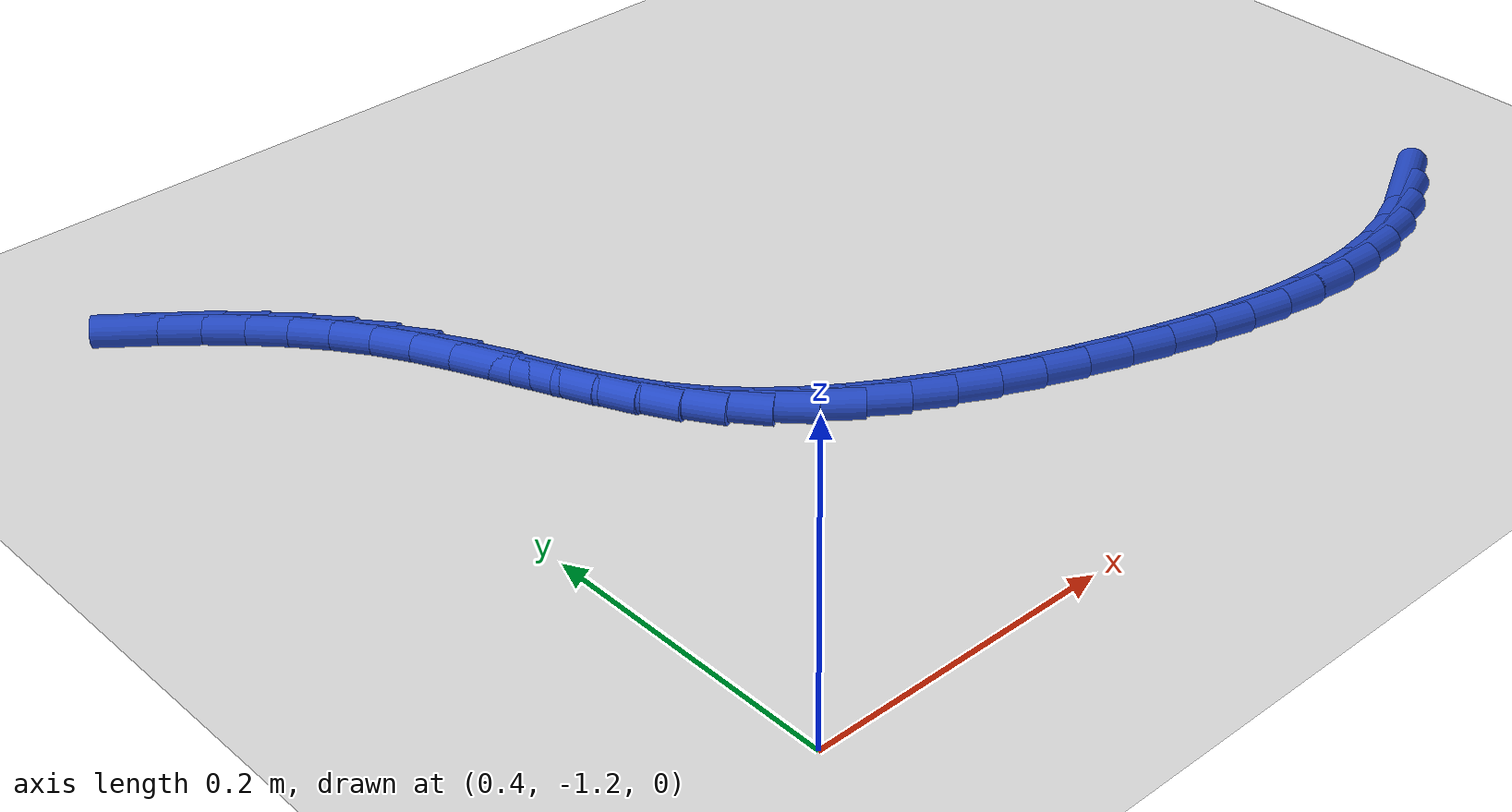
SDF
<sdf version="1.6">
 <world name="default">
  <model name="ground_plane">
   <static>1</static>
   <link name="link">
    <collision name="collision">
     <geometry><plane><normal>0 0 1</normal><size>100 100</size></plane></geometry>
     <surface><friction><ode><mu>100</mu><mu2>50</mu2></ode></friction></surface>
    </collision>
    <visual name="visual">
     <cast_shadows>0</cast_shadows>
     <geometry><plane><normal>0 0 1</normal><size>100 100</size></plane></geometry>
     <material>
      <script><uri>file://media/materials/scripts/gazebo.material</uri><name>Gazebo/WhiteGlow</name></script>
     </material>
    </visual>
   </link>
  </model>
  <model name="line">
   <link name="link_207">
    <pose>1.0414787795004214 -1.0778599474732717 0.01 0 1.57 0.48875854742303204</pose>
    <collision name="collision">
     <geometry><cylinder><radius>0.01</radius><length>0.08</length></cylinder></geometry>
    </collision>
    <visual name="visual">
     <material>
      <script><name>Gazebo/Blue</name><uri>file://media/materials/scripts/gazebo.material</uri></script>
     </material>
     <geometry><cylinder><radius>0.01</radius><length>0.08</length></cylinder></geometry>
    </visual>
   </link>
   <link name="link_208">
    <pose>1.017736781871321 -1.0904858124566492 0.01 0 1.57 0.3660434187600606</pose>
    <collision name="collision">
     <geometry><cylinder><radius>0.01</radius><length>0.08</length></cylinder></geometry>
    </collision>
    <visual name="visual">
     <material>
      <script><name>Gazebo/Blue</name><uri>file://media/materials/scripts/gazebo.material</uri></script>
     </material>
     <geometry><cylinder><radius>0.01</radius><length>0.08</length></cylinder></geometry>
    </visual>
   </link>
   <link name="link_209">
    <pose>0.9931991654890885 -1.0998915301433223 0.01 0 1.57 0.24175511031721134</pose>
    <collision name="collision">
     <geometry><cylinder><radius>0.01</radius><length>0.08</length></cylinder></geometry>
    </collision>
    <visual name="visual">
     <material>
      <script><name>Gazebo/Blue</name><uri>file://media/materials/scripts/gazebo.material</uri></script>
     </material>
     <geometry><cylinder><radius>0.01</radius><length>0.08</length></cylinder></geometry>
    </visual>
   </link>
   <link name="link_210">
    <pose>0.9679317358370576 -1.1061219153690132 0.01 0 1.57 0.12784594000006813</pose>
    <collision name="collision">
     <geometry><cylinder><radius>0.01</radius><length>0.08</length></cylinder></geometry>
    </collision>
    <visual name="visual">
     <material>
      <script><name>Gazebo/Blue</name><uri>file://media/materials/scripts/gazebo.material</uri></script>
     </material>
     <geometry><cylinder><radius>0.01</radius><length>0.08</length></cylinder></geometry>
    </visual>
   </link>
   <link name="link_211">
    <pose>0.942050759018548 -1.1094488386860752 0.01 0 1.57 0.02635393816141138</pose>
    <collision name="collision">
     <geometry><cylinder><radius>0.01</radius><length>0.08</length></cylinder></geometry>
    </collision>
    <visual name="visual">
     <material>
      <script><name>Gazebo/Blue</name><uri>file://media/materials/scripts/gazebo.material</uri></script>
     </material>
     <geometry><cylinder><radius>0.01</radius><length>0.08</length></cylinder></geometry>
    </visual>
   </link>
   <link name="link_212">
    <pose>0.9156725011368837 -1.1101441706468638 0.01 0 1.57 -0.062118559837692225</pose>
    <collision name="collision">
     <geometry><cylinder><radius>0.01</radius><length>0.08</length></cylinder></geometry>
    </collision>
    <visual name="visual">
     <material>
      <script><name>Gazebo/Blue</name><uri>file://media/materials/scripts/gazebo.material</uri></script>
     </material>
     <geometry><cylinder><radius>0.01</radius><length>0.08</length></cylinder></geometry>
    </visual>
   </link>
   <link name="link_213">
    <pose>0.8889132282953847 -1.1084797818037315 0.01 0 1.57 -0.13796618900028212</pose>
    <collision name="collision">
     <geometry><cylinder><radius>0.01</radius><length>0.08</length></cylinder></geometry>
    </collision>
    <visual name="visual">
     <material>
      <script><name>Gazebo/Blue</name><uri>file://media/materials/scripts/gazebo.material</uri></script>
     </material>
     <geometry><cylinder><radius>0.01</radius><length>0.08</length></cylinder></geometry>
    </visual>
   </link>
   <link name="link_214">
    <pose>0.8618892065973744 -1.104727542709033 0.01 0 1.57 -0.20212285274951514</pose>
    <collision name="collision">
     <geometry><cylinder><radius>0.01</radius><length>0.08</length></cylinder></geometry>
    </collision>
    <visual name="visual">
     <material>
      <script><name>Gazebo/Blue</name><uri>file://media/materials/scripts/gazebo.material</uri></script>
     </material>
     <geometry><cylinder><radius>0.01</radius><length>0.08</length></cylinder></geometry>
    </visual>
   </link>
   <link name="link_215">
    <pose>0.8347167021461741 -1.0991593239151225 0.01 0 1.57 -0.25571384674013625</pose>
    <collision name="collision">
     <geometry><cylinder><radius>0.01</radius><length>0.08</length></cylinder></geometry>
    </collision>
    <visual name="visual">
     <material>
      <script><name>Gazebo/Blue</name><uri>file://media/materials/scripts/gazebo.material</uri></script>
     </material>
     <geometry><cylinder><radius>0.01</radius><length>0.08</length></cylinder></geometry>
    </visual>
   </link>
   <link name="link_216">
    <pose>0.8075119810451045 -1.0920469959743537 0.01 0 1.57 -0.29983710484629056</pose>
    <collision name="collision">
     <geometry><cylinder><radius>0.01</radius><length>0.08</length></cylinder></geometry>
    </collision>
    <visual name="visual">
     <material>
      <script><name>Gazebo/Blue</name><uri>file://media/materials/scripts/gazebo.material</uri></script>
     </material>
     <geometry><cylinder><radius>0.01</radius><length>0.08</length></cylinder></geometry>
    </visual>
   </link>
   <link name="link_217">
    <pose>0.7803913093974892 -1.083662429439081 0.01 0 1.57 -0.3354435684962686</pose>
    <collision name="collision">
     <geometry><cylinder><radius>0.01</radius><length>0.08</length></cylinder></geometry>
    </collision>
    <visual name="visual">
     <material>
      <script><name>Gazebo/Blue</name><uri>file://media/materials/scripts/gazebo.material</uri></script>
     </material>
     <geometry><cylinder><radius>0.01</radius><length>0.08</length></cylinder></geometry>
    </visual>
   </link>
   <link name="link_218">
    <pose>0.7534709533066484 -1.0742774948616576 0.01 0 1.57 -0.36338038380236326</pose>
    <collision name="collision">
     <geometry><cylinder><radius>0.01</radius><length>0.08</length></cylinder></geometry>
    </collision>
    <visual name="visual">
     <material>
      <script><name>Gazebo/Blue</name><uri>file://media/materials/scripts/gazebo.material</uri></script>
     </material>
     <geometry><cylinder><radius>0.01</radius><length>0.08</length></cylinder></geometry>
    </visual>
   </link>
   <link name="link_219">
    <pose>0.7268676920132833 -1.064161149926012 0.01 0 1.57 -0.38961339968206576</pose>
    <collision name="collision">
     <geometry><cylinder><radius>0.01</radius><length>0.08</length></cylinder></geometry>
    </collision>
    <visual name="visual">
     <material>
      <script><name>Gazebo/Blue</name><uri>file://media/materials/scripts/gazebo.material</uri></script>
     </material>
     <geometry><cylinder><radius>0.01</radius><length>0.08</length></cylinder></geometry>
    </visual>
   </link>
   <link name="link_220">
    <pose>0.700725646275891 -1.0534271458404103 0.01 0 1.57 -0.4226767643395442</pose>
    <collision name="collision">
     <geometry><cylinder><radius>0.01</radius><length>0.08</length></cylinder></geometry>
    </collision>
    <visual name="visual">
     <material>
      <script><name>Gazebo/Blue</name><uri>file://media/materials/scripts/gazebo.material</uri></script>
     </material>
     <geometry><cylinder><radius>0.01</radius><length>0.08</length></cylinder></geometry>
    </visual>
   </link>
   <link name="link_221">
    <pose>0.6752294448965169 -1.0419592864224534 0.01 0 1.57 -0.4638186430774987</pose>
    <collision name="collision">
     <geometry><cylinder><radius>0.01</radius><length>0.08</length></cylinder></geometry>
    </collision>
    <visual name="visual">
     <material>
      <script><name>Gazebo/Blue</name><uri>file://media/materials/scripts/gazebo.material</uri></script>
     </material>
     <geometry><cylinder><radius>0.01</radius><length>0.08</length></cylinder></geometry>
    </visual>
   </link>
   <link name="link_222">
    <pose>0.6505669913467517 -1.0296227865466145 0.01 0 1.57 -0.5137371831866568</pose>
    <collision name="collision">
     <geometry><cylinder><radius>0.01</radius><length>0.08</length></cylinder></geometry>
    </collision>
    <visual name="visual">
     <material>
      <script><name>Gazebo/Blue</name><uri>file://media/materials/scripts/gazebo.material</uri></script>
     </material>
     <geometry><cylinder><radius>0.01</radius><length>0.08</length></cylinder></geometry>
    </visual>
   </link>
   <link name="link_223">
    <pose>0.6269261890981883 -1.0162828610873675 0.01 0 1.57 -0.5731664326718636</pose>
    <collision name="collision">
     <geometry><cylinder><radius>0.01</radius><length>0.08</length></cylinder></geometry>
    </collision>
    <visual name="visual">
     <material>
      <script><name>Gazebo/Blue</name><uri>file://media/materials/scripts/gazebo.material</uri></script>
     </material>
     <geometry><cylinder><radius>0.01</radius><length>0.08</length></cylinder></geometry>
    </visual>
   </link>
   <link name="link_224">
    <pose>0.6044949416224173 -1.0018047249191866 0.01 0 1.57 -0.6427640608245405</pose>
    <collision name="collision">
     <geometry><cylinder><radius>0.01</radius><length>0.08</length></cylinder></geometry>
    </collision>
    <visual name="visual">
     <material>
      <script><name>Gazebo/Blue</name><uri>file://media/materials/scripts/gazebo.material</uri></script>
     </material>
     <geometry><cylinder><radius>0.01</radius><length>0.08</length></cylinder></geometry>
    </visual>
   </link>
   <link name="link_225">
    <pose>0.5834611523910311 -0.9860535929165448 0.01 0 1.57 -0.7229370199461855</pose>
    <collision name="collision">
     <geometry><cylinder><radius>0.01</radius><length>0.08</length></cylinder></geometry>
    </collision>
    <visual name="visual">
     <material>
      <script><name>Gazebo/Blue</name><uri>file://media/materials/scripts/gazebo.material</uri></script>
     </material>
     <geometry><cylinder><radius>0.01</radius><length>0.08</length></cylinder></geometry>
    </visual>
   </link>
   <link name="link_226">
    <pose>0.5640127248756209 -0.9688946799539163 0.01 0 1.57 -0.8136043004290652</pose>
    <collision name="collision">
     <geometry><cylinder><radius>0.01</radius><length>0.08</length></cylinder></geometry>
    </collision>
    <visual name="visual">
     <material>
      <script><name>Gazebo/Blue</name><uri>file://media/materials/scripts/gazebo.material</uri></script>
     </material>
     <geometry><cylinder><radius>0.01</radius><length>0.08</length></cylinder></geometry>
    </visual>
   </link>
   <link name="link_227">
    <pose>0.546337562547778 -0.9501932009057737 0.01 0 1.57 -0.913912932215125</pose>
    <collision name="collision">
     <geometry><cylinder><radius>0.01</radius><length>0.08</length></cylinder></geometry>
    </collision>
    <visual name="visual">
     <material>
      <script><name>Gazebo/Blue</name><uri>file://media/materials/scripts/gazebo.material</uri></script>
     </material>
     <geometry><cylinder><radius>0.01</radius><length>0.08</length></cylinder></geometry>
    </visual>
   </link>
   <link name="link_228">
    <pose>0.5306231998011489 -0.9298146608612946 0.01 0 1.57 -1.0130694690591369</pose>
    <collision name="collision">
     <geometry><cylinder><radius>0.01</radius><length>0.08</length></cylinder></geometry>
    </collision>
    <visual name="visual">
     <material>
      <script><name>Gazebo/Blue</name><uri>file://media/materials/scripts/gazebo.material</uri></script>
     </material>
     <geometry><cylinder><radius>0.01</radius><length>0.08</length></cylinder></geometry>
    </visual>
   </link>
   <link name="link_229">
    <pose>0.5168720830003857 -0.9077701039965973 0.01 0 1.57 -1.086409643151661</pose>
    <collision name="collision">
     <geometry><cylinder><radius>0.01</radius><length>0.08</length></cylinder></geometry>
    </collision>
    <visual name="visual">
     <material>
      <script><name>Gazebo/Blue</name><uri>file://media/materials/scripts/gazebo.material</uri></script>
     </material>
     <geometry><cylinder><radius>0.01</radius><length>0.08</length></cylinder></geometry>
    </visual>
   </link>
   <link name="link_230">
    <pose>0.504601958618683 -0.8844517054557478 0.01 0 1.57 -1.131276333697008</pose>
    <collision name="collision">
     <geometry><cylinder><radius>0.01</radius><length>0.08</length></cylinder></geometry>
    </collision>
    <visual name="visual">
     <material>
      <script><name>Gazebo/Blue</name><uri>file://media/materials/scripts/gazebo.material</uri></script>
     </material>
     <geometry><cylinder><radius>0.01</radius><length>0.08</length></cylinder></geometry>
    </visual>
   </link>
   <link name="link_231">
    <pose>0.4932522023789272 -0.8603132651540296 0.01 0 1.57 -1.1492019706214125</pose>
    <collision name="collision">
     <geometry><cylinder><radius>0.01</radius><length>0.08</length></cylinder></geometry>
    </collision>
    <visual name="visual">
     <material>
      <script><name>Gazebo/Blue</name><uri>file://media/materials/scripts/gazebo.material</uri></script>
     </material>
     <geometry><cylinder><radius>0.01</radius><length>0.08</length></cylinder></geometry>
    </visual>
   </link>
   <link name="link_232">
    <pose>0.4822621900040073 -0.8358085830067309 0.01 0 1.57 -1.141043831727473</pose>
    <collision name="collision">
     <geometry><cylinder><radius>0.01</radius><length>0.08</length></cylinder></geometry>
    </collision>
    <visual name="visual">
     <material>
      <script><name>Gazebo/Blue</name><uri>file://media/materials/scripts/gazebo.material</uri></script>
     </material>
     <geometry><cylinder><radius>0.01</radius><length>0.08</length></cylinder></geometry>
    </visual>
   </link>
   <link name="link_233">
    <pose>0.47107129721680957 -0.8113914589291354 0.01 0 1.57 -1.1066625042660079</pose>
    <collision name="collision">
     <geometry><cylinder><radius>0.01</radius><length>0.08</length></cylinder></geometry>
    </collision>
    <visual name="visual">
     <material>
      <script><name>Gazebo/Blue</name><uri>file://media/materials/scripts/gazebo.material</uri></script>
     </material>
     <geometry><cylinder><radius>0.01</radius><length>0.08</length></cylinder></geometry>
    </visual>
   </link>
   <link name="link_234">
    <pose>0.459118899740223 -0.7875156928365311 0.01 0 1.57 -1.0451205188121948</pose>
    <collision name="collision">
     <geometry><cylinder><radius>0.01</radius><length>0.08</length></cylinder></geometry>
    </collision>
    <visual name="visual">
     <material>
      <script><name>Gazebo/Blue</name><uri>file://media/materials/scripts/gazebo.material</uri></script>
     </material>
     <geometry><cylinder><radius>0.01</radius><length>0.08</length></cylinder></geometry>
    </visual>
   </link>
   <link name="link_235">
    <pose>0.4458450300202517 -0.7646345619383759 0.01 0 1.57 -0.9650978933125037</pose>
    <collision name="collision">
     <geometry><cylinder><radius>0.01</radius><length>0.08</length></cylinder></geometry>
    </collision>
    <visual name="visual">
     <material>
      <script><name>Gazebo/Blue</name><uri>file://media/materials/scripts/gazebo.material</uri></script>
     </material>
     <geometry><cylinder><radius>0.01</radius><length>0.08</length></cylinder></geometry>
    </visual>
   </link>
   <link name="link_236">
    <pose>0.43089088707436185 -0.7430412288749095 0.01 0 1.57 -0.8903637016947077</pose>
    <collision name="collision">
     <geometry><cylinder><radius>0.01</radius><length>0.08</length></cylinder></geometry>
    </collision>
    <visual name="visual">
     <material>
      <script><name>Gazebo/Blue</name><uri>file://media/materials/scripts/gazebo.material</uri></script>
     </material>
     <geometry><cylinder><radius>0.01</radius><length>0.08</length></cylinder></geometry>
    </visual>
   </link>
   <link name="link_237">
    <pose>0.4143815867884805 -0.7226436921889366 0.01 0 1.57 -0.8252073425416928</pose>
    <collision name="collision">
     <geometry><cylinder><radius>0.01</radius><length>0.08</length></cylinder></geometry>
    </collision>
    <visual name="visual">
     <material>
      <script><name>Gazebo/Blue</name><uri>file://media/materials/scripts/gazebo.material</uri></script>
     </material>
     <geometry><cylinder><radius>0.01</radius><length>0.08</length></cylinder></geometry>
    </visual>
   </link>
   <link name="link_238">
    <pose>0.39651352985374466 -0.7032932126869864 0.01 0 1.57 -0.7699721815259146</pose>
    <collision name="collision">
     <geometry><cylinder><radius>0.01</radius><length>0.08</length></cylinder></geometry>
    </collision>
    <visual name="visual">
     <material>
      <script><name>Gazebo/Blue</name><uri>file://media/materials/scripts/gazebo.material</uri></script>
     </material>
     <geometry><cylinder><radius>0.01</radius><length>0.08</length></cylinder></geometry>
    </visual>
   </link>
   <link name="link_239">
    <pose>0.3774831169612931 -0.6848410511755909 0.01 0 1.57 -0.7246282729375675</pose>
    <collision name="collision">
     <geometry><cylinder><radius>0.01</radius><length>0.08</length></cylinder></geometry>
    </collision>
    <visual name="visual">
     <material>
      <script><name>Gazebo/Blue</name><uri>file://media/materials/scripts/gazebo.material</uri></script>
     </material>
     <geometry><cylinder><radius>0.01</radius><length>0.08</length></cylinder></geometry>
    </visual>
   </link>
   <link name="link_240">
    <pose>0.35748674880226256 -0.6671384684612797 0.01 0 1.57 -0.6889357219221395</pose>
    <collision name="collision">
     <geometry><cylinder><radius>0.01</radius><length>0.08</length></cylinder></geometry>
    </collision>
    <visual name="visual">
     <material>
      <script><name>Gazebo/Blue</name><uri>file://media/materials/scripts/gazebo.material</uri></script>
     </material>
     <geometry><cylinder><radius>0.01</radius><length>0.08</length></cylinder></geometry>
    </visual>
   </link>
  </model>
 </world>
</sdf>
